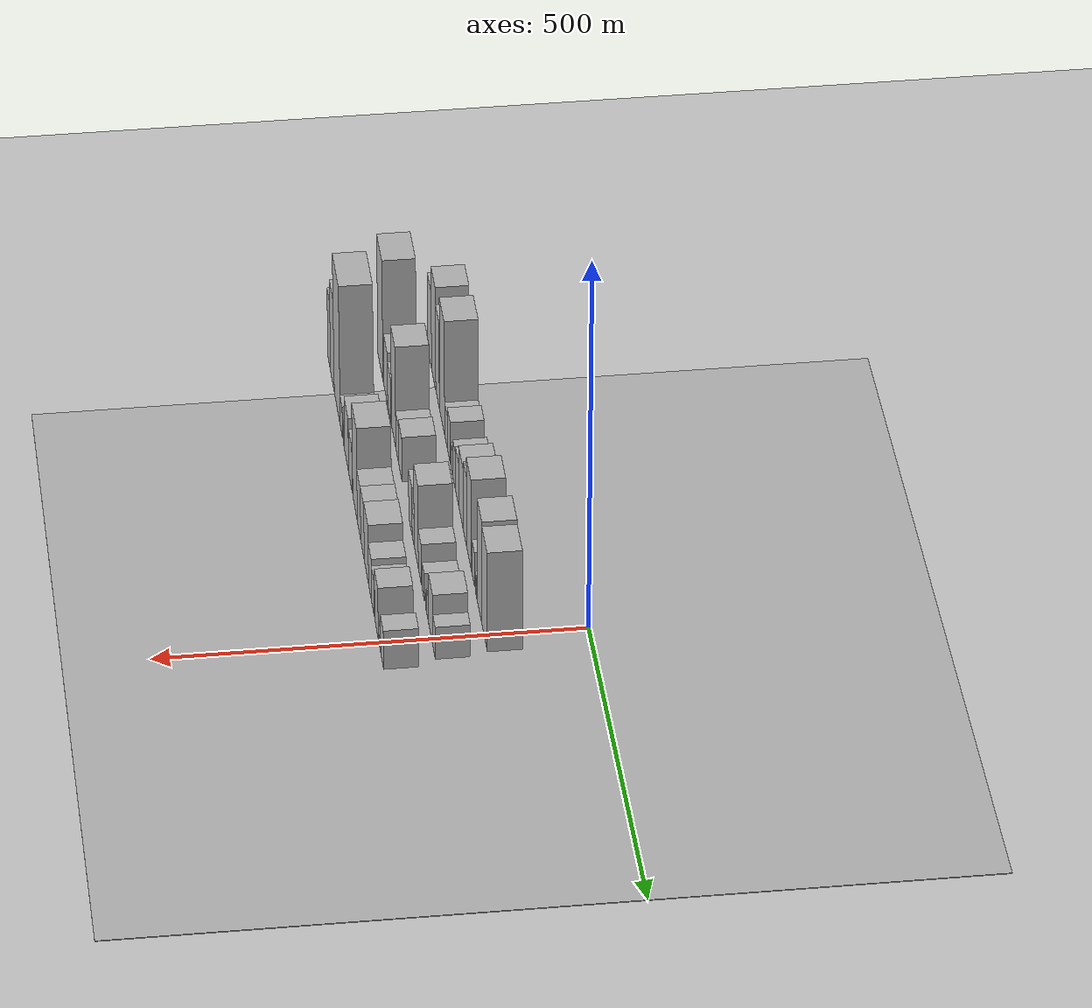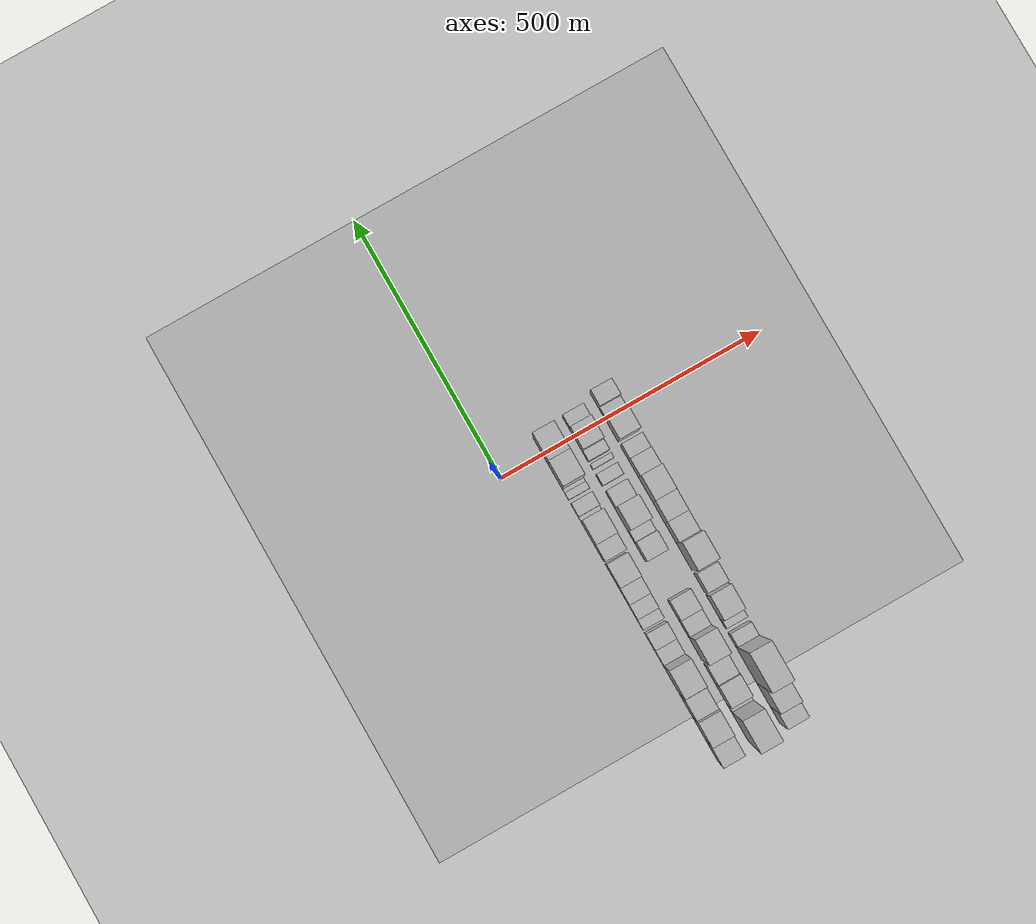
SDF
<sdf version="1.6">
 <world name="default">
  <include><name>ground_plane_1</name><uri>model://HANNAS_ground_plane</uri></include>
  <include>
   <name>ground_plane_2</name>
   <uri>model://HANNAS_ground_plane</uri>
   <pose>100 0 0  0 0 0</pose>
  </include>
  <model name="building_1">
   <static>1</static>
   <pose>100.0000 -559.4491 0 0.000000 0.000000 0.000000</pose>
   <link name="link">
    <pose>0 0 55.50 0 0 0</pose>
    <collision name="collision"><geometry><box><size>40.0000 41.1019 111.0000</size></box></geometry></collision>
    <visual name="visual">
     <cast_shadows>0</cast_shadows>
     <geometry><box><size>40.0000 41.1019 111.0000</size></box></geometry>
     <material>
      <script>
       <uri>model://HANNAS_wall/materials/scripts</uri>
       <uri>model://HANNAS_wall/materials/textures</uri>
       <name>vrc/HANNAS_wall</name>
      </script>
     </material>
    </visual>
   </link>
  </model>
  <model name="building_2">
   <static>1</static>
   <pose>100.0000 -516.3879 0 0.000000 0.000000 0.000000</pose>
   <link name="link">
    <pose>0 0 73.50 0 0 0</pose>
    <collision name="collision"><geometry><box><size>40.0000 45.0204 147.0000</size></box></geometry></collision>
    <visual name="visual">
     <cast_shadows>0</cast_shadows>
     <geometry><box><size>40.0000 45.0204 147.0000</size></box></geometry>
     <material>
      <script>
       <uri>model://HANNAS_wall/materials/scripts</uri>
       <uri>model://HANNAS_wall/materials/textures</uri>
       <name>vrc/HANNAS_wall</name>
      </script>
     </material>
    </visual>
   </link>
  </model>
  <model name="building_3">
   <static>1</static>
   <pose>100.0000 -474.6884 0 0.000000 0.000000 0.000000</pose>
   <link name="link">
    <pose>0 0 61.50 0 0 0</pose>
    <collision name="collision"><geometry><box><size>40.0000 38.3787 123.0000</size></box></geometry></collision>
    <visual name="visual">
     <cast_shadows>0</cast_shadows>
     <geometry><box><size>40.0000 38.3787 123.0000</size></box></geometry>
     <material>
      <script>
       <uri>model://HANNAS_wall/materials/scripts</uri>
       <uri>model://HANNAS_wall/materials/textures</uri>
       <name>vrc/HANNAS_wall</name>
      </script>
     </material>
    </visual>
   </link>
  </model>
  <model name="building_4">
   <static>1</static>
   <pose>100.0000 -424.9814 0 0.000000 0.000000 0.000000</pose>
   <link name="link">
    <pose>0 0 81.00 0 0 0</pose>
    <collision name="collision"><geometry><box><size>40.0000 51.0353 162.0000</size></box></geometry></collision>
    <visual name="visual">
     <cast_shadows>0</cast_shadows>
     <geometry><box><size>40.0000 51.0353 162.0000</size></box></geometry>
     <material>
      <script>
       <uri>model://HANNAS_wall/materials/scripts</uri>
       <uri>model://HANNAS_wall/materials/textures</uri>
       <name>vrc/HANNAS_wall</name>
      </script>
     </material>
    </visual>
   </link>
  </model>
  <model name="building_5">
   <static>1</static>
   <pose>100.0000 -385.1434 0 0.000000 0.000000 0.000000</pose>
   <link name="link">
    <pose>0 0 24.00 0 0 0</pose>
    <collision name="collision"><geometry><box><size>40.0000 28.6407 48.0000</size></box></geometry></collision>
    <visual name="visual">
     <cast_shadows>0</cast_shadows>
     <geometry><box><size>40.0000 28.6407 48.0000</size></box></geometry>
     <material>
      <script>
       <uri>model://HANNAS_wall/materials/scripts</uri>
       <uri>model://HANNAS_wall/materials/textures</uri>
       <name>vrc/HANNAS_wall</name>
      </script>
     </material>
    </visual>
   </link>
  </model>
  <model name="building_6">
   <static>1</static>
   <pose>100.0000 -355.3499 0 0.000000 0.000000 0.000000</pose>
   <link name="link">
    <pose>0 0 30.00 0 0 0</pose>
    <collision name="collision"><geometry><box><size>40.0000 30.9463 60.0000</size></box></geometry></collision>
    <visual name="visual">
     <cast_shadows>0</cast_shadows>
     <geometry><box><size>40.0000 30.9463 60.0000</size></box></geometry>
     <material>
      <script>
       <uri>model://HANNAS_wall/materials/scripts</uri>
       <uri>model://HANNAS_wall/materials/textures</uri>
       <name>vrc/HANNAS_wall</name>
      </script>
     </material>
    </visual>
   </link>
  </model>
  <model name="building_7">
   <static>1</static>
   <pose>100.0000 -323.7551 0 0.000000 0.000000 0.000000</pose>
   <link name="link">
    <pose>0 0 18.00 0 0 0</pose>
    <collision name="collision"><geometry><box><size>40.0000 20.2433 36.0000</size></box></geometry></collision>
    <visual name="visual">
     <cast_shadows>0</cast_shadows>
     <geometry><box><size>40.0000 20.2433 36.0000</size></box></geometry>
     <material>
      <script>
       <uri>model://HANNAS_wall/materials/scripts</uri>
       <uri>model://HANNAS_wall/materials/textures</uri>
       <name>vrc/HANNAS_wall</name>
      </script>
     </material>
    </visual>
   </link>
  </model>
  <model name="building_8">
   <static>1</static>
   <pose>100.0000 -299.7620 0 0.000000 0.000000 0.000000</pose>
   <link name="link">
    <pose>0 0 27.00 0 0 0</pose>
    <collision name="collision"><geometry><box><size>40.0000 27.7428 54.0000</size></box></geometry></collision>
    <visual name="visual">
     <cast_shadows>0</cast_shadows>
     <geometry><box><size>40.0000 27.7428 54.0000</size></box></geometry>
     <material>
      <script>
       <uri>model://HANNAS_wall/materials/scripts</uri>
       <uri>model://HANNAS_wall/materials/textures</uri>
       <name>vrc/HANNAS_wall</name>
      </script>
     </material>
    </visual>
   </link>
  </model>
  <model name="building_9">
   <static>1</static>
   <pose>100.0000 -269.9107 0 0.000000 0.000000 0.000000</pose>
   <link name="link">
    <pose>0 0 31.50 0 0 0</pose>
    <collision name="collision"><geometry><box><size>40.0000 31.9600 63.0000</size></box></geometry></collision>
    <visual name="visual">
     <cast_shadows>0</cast_shadows>
     <geometry><box><size>40.0000 31.9600 63.0000</size></box></geometry>
     <material>
      <script>
       <uri>model://HANNAS_wall/materials/scripts</uri>
       <uri>model://HANNAS_wall/materials/textures</uri>
       <name>vrc/HANNAS_wall</name>
      </script>
     </material>
    </visual>
   </link>
  </model>
  <model name="building_10">
   <static>1</static>
   <pose>100.0000 -231.6543 0 0.000000 0.000000 0.000000</pose>
   <link name="link">
    <pose>0 0 43.50 0 0 0</pose>
    <collision name="collision"><geometry><box><size>40.0000 44.5528 87.0000</size></box></geometry></collision>
    <visual name="visual">
     <cast_shadows>0</cast_shadows>
     <geometry><box><size>40.0000 44.5528 87.0000</size></box></geometry>
     <material>
      <script>
       <uri>model://HANNAS_wall/materials/scripts</uri>
       <uri>model://HANNAS_wall/materials/textures</uri>
       <name>vrc/HANNAS_wall</name>
      </script>
     </material>
    </visual>
   </link>
  </model>
  <model name="building_11">
   <static>1</static>
   <pose>100.0000 -189.0056 0 0.000000 0.000000 0.000000</pose>
   <link name="link">
    <pose>0 0 49.50 0 0 0</pose>
    <collision name="collision"><geometry><box><size>40.0000 30.7445 99.0000</size></box></geometry></collision>
    <visual name="visual">
     <cast_shadows>0</cast_shadows>
     <geometry><box><size>40.0000 30.7445 99.0000</size></box></geometry>
     <material>
      <script>
       <uri>model://HANNAS_wall/materials/scripts</uri>
       <uri>model://HANNAS_wall/materials/textures</uri>
       <name>vrc/HANNAS_wall</name>
      </script>
     </material>
    </visual>
   </link>
  </model>
  <model name="building_12">
   <static>1</static>
   <pose>100.0000 -151.0599 0 0.000000 0.000000 0.000000</pose>
   <link name="link">
    <pose>0 0 63.00 0 0 0</pose>
    <collision name="collision"><geometry><box><size>40.0000 45.1471 126.0000</size></box></geometry></collision>
    <visual name="visual">
     <cast_shadows>0</cast_shadows>
     <geometry><box><size>40.0000 45.1471 126.0000</size></box></geometry>
     <material>
      <script>
       <uri>model://HANNAS_wall/materials/scripts</uri>
       <uri>model://HANNAS_wall/materials/textures</uri>
       <name>vrc/HANNAS_wall</name>
      </script>
     </material>
    </visual>
   </link>
  </model>
  <model name="building_13">
   <static>1</static>
   <pose>100.0000 -124.5422 0 0.000000 0.000000 0.000000</pose>
   <link name="link">
    <pose>0 0 9.00 0 0 0</pose>
    <collision name="collision"><geometry><box><size>40.0000 7.8883 18.0000</size></box></geometry></collision>
    <visual name="visual">
     <cast_shadows>0</cast_shadows>
     <geometry><box><size>40.0000 7.8883 18.0000</size></box></geometry>
     <material>
      <script>
       <uri>model://HANNAS_wall/materials/scripts</uri>
       <uri>model://HANNAS_wall/materials/textures</uri>
       <name>vrc/HANNAS_wall</name>
      </script>
     </material>
    </visual>
   </link>
  </model>
  <model name="building_14">
   <static>1</static>
   <pose>100.0000 -107.7938 0 0.000000 0.000000 0.000000</pose>
   <link name="link">
    <pose>0 0 24.00 0 0 0</pose>
    <collision name="collision"><geometry><box><size>40.0000 25.6084 48.0000</size></box></geometry></collision>
    <visual name="visual">
     <cast_shadows>0</cast_shadows>
     <geometry><box><size>40.0000 25.6084 48.0000</size></box></geometry>
     <material>
      <script>
       <uri>model://HANNAS_wall/materials/scripts</uri>
       <uri>model://HANNAS_wall/materials/textures</uri>
       <name>vrc/HANNAS_wall</name>
      </script>
     </material>
    </visual>
   </link>
  </model>
  <model name="building_15">
   <static>1</static>
   <pose>100.0000 -81.2954 0 0.000000 0.000000 0.000000</pose>
   <link name="link">
    <pose>0 0 13.50 0 0 0</pose>
    <collision name="collision"><geometry><box><size>40.0000 13.3885 27.0000</size></box></geometry></collision>
    <visual name="visual">
     <cast_shadows>0</cast_shadows>
     <geometry><box><size>40.0000 13.3885 27.0000</size></box></geometry>
     <material>
      <script>
       <uri>model://HANNAS_wall/materials/scripts</uri>
       <uri>model://HANNAS_wall/materials/textures</uri>
       <name>vrc/HANNAS_wall</name>
      </script>
     </material>
    </visual>
   </link>
  </model>
  <model name="building_16">
   <static>1</static>
   <pose>100.0000 -70.9838 0 0.000000 0.000000 0.000000</pose>
   <link name="link">
    <pose>0 0 7.50 0 0 0</pose>
    <collision name="collision"><geometry><box><size>40.0000 7.2346 15.0000</size></box></geometry></collision>
    <visual name="visual">
     <cast_shadows>0</cast_shadows>
     <geometry><box><size>40.0000 7.2346 15.0000</size></box></geometry>
     <material>
      <script>
       <uri>model://HANNAS_wall/materials/scripts</uri>
       <uri>model://HANNAS_wall/materials/textures</uri>
       <name>vrc/HANNAS_wall</name>
      </script>
     </material>
    </visual>
   </link>
  </model>
  <model name="building_17">
   <static>1</static>
   <pose>100.0000 -43.8087 0 0.000000 0.000000 0.000000</pose>
   <link name="link">
    <pose>0 0 72.00 0 0 0</pose>
    <collision name="collision"><geometry><box><size>40.0000 47.1157 144.0000</size></box></geometry></collision>
    <visual name="visual">
     <cast_shadows>0</cast_shadows>
     <geometry><box><size>40.0000 47.1157 144.0000</size></box></geometry>
     <material>
      <script>
       <uri>model://HANNAS_wall/materials/scripts</uri>
       <uri>model://HANNAS_wall/materials/textures</uri>
       <name>vrc/HANNAS_wall</name>
      </script>
     </material>
    </visual>
   </link>
  </model>
  <model name="building_18">
   <static>1</static>
   <pose>100.0000 5.4919 0 0.000000 0.000000 0.000000</pose>
   <link name="link">
    <pose>0 0 69.00 0 0 0</pose>
    <collision name="collision"><geometry><box><size>40.0000 51.4854 138.0000</size></box></geometry></collision>
    <visual name="visual">
     <cast_shadows>0</cast_shadows>
     <geometry><box><size>40.0000 51.4854 138.0000</size></box></geometry>
     <material>
      <script>
       <uri>model://HANNAS_wall/materials/scripts</uri>
       <uri>model://HANNAS_wall/materials/textures</uri>
       <name>vrc/HANNAS_wall</name>
      </script>
     </material>
    </visual>
   </link>
  </model>
  <model name="building_35">
   <static>1</static>
   <pose>160.0000 -550.9667 0 0.000000 0.000000 0.000000</pose>
   <link name="link">
    <pose>0 0 85.50 0 0 0</pose>
    <collision name="collision"><geometry><box><size>40.0000 58.0666 171.0000</size></box></geometry></collision>
    <visual name="visual">
     <cast_shadows>0</cast_shadows>
     <geometry><box><size>40.0000 58.0666 171.0000</size></box></geometry>
     <material>
      <script>
       <uri>model://HANNAS_wall/materials/scripts</uri>
       <uri>model://HANNAS_wall/materials/textures</uri>
       <name>vrc/HANNAS_wall</name>
      </script>
     </material>
    </visual>
   </link>
  </model>
  <model name="building_36">
   <static>1</static>
   <pose>160.0000 -516.1299 0 0.000000 0.000000 0.000000</pose>
   <link name="link">
    <pose>0 0 13.50 0 0 0</pose>
    <collision name="collision"><geometry><box><size>40.0000 11.6070 27.0000</size></box></geometry></collision>
    <visual name="visual">
     <cast_shadows>0</cast_shadows>
     <geometry><box><size>40.0000 11.6070 27.0000</size></box></geometry>
     <material>
      <script>
       <uri>model://HANNAS_wall/materials/scripts</uri>
       <uri>model://HANNAS_wall/materials/textures</uri>
       <name>vrc/HANNAS_wall</name>
      </script>
     </material>
    </visual>
   </link>
  </model>
  <model name="building_37">
   <static>1</static>
   <pose>160.0000 -489.8425 0 0.000000 0.000000 0.000000</pose>
   <link name="link">
    <pose>0 0 37.50 0 0 0</pose>
    <collision name="collision"><geometry><box><size>40.0000 40.9678 75.0000</size></box></geometry></collision>
    <visual name="visual">
     <cast_shadows>0</cast_shadows>
     <geometry><box><size>40.0000 40.9678 75.0000</size></box></geometry>
     <material>
      <script>
       <uri>model://HANNAS_wall/materials/scripts</uri>
       <uri>model://HANNAS_wall/materials/textures</uri>
       <name>vrc/HANNAS_wall</name>
      </script>
     </material>
    </visual>
   </link>
  </model>
  <model name="building_38">
   <static>1</static>
   <pose>160.0000 -450.9846 0 0.000000 0.000000 0.000000</pose>
   <link name="link">
    <pose>0 0 31.50 0 0 0</pose>
    <collision name="collision"><geometry><box><size>40.0000 36.7479 63.0000</size></box></geometry></collision>
    <visual name="visual">
     <cast_shadows>0</cast_shadows>
     <geometry><box><size>40.0000 36.7479 63.0000</size></box></geometry>
     <material>
      <script>
       <uri>model://HANNAS_wall/materials/scripts</uri>
       <uri>model://HANNAS_wall/materials/textures</uri>
       <name>vrc/HANNAS_wall</name>
      </script>
     </material>
    </visual>
   </link>
  </model>
  <model name="building_39">
   <static>1</static>
   <pose>160.0000 -402.6543 0 0.000000 0.000000 0.000000</pose>
   <link name="link">
    <pose>0 0 72.00 0 0 0</pose>
    <collision name="collision"><geometry><box><size>40.0000 45.9127 144.0000</size></box></geometry></collision>
    <visual name="visual">
     <cast_shadows>0</cast_shadows>
     <geometry><box><size>40.0000 45.9127 144.0000</size></box></geometry>
     <material>
      <script>
       <uri>model://HANNAS_wall/materials/scripts</uri>
       <uri>model://HANNAS_wall/materials/textures</uri>
       <name>vrc/HANNAS_wall</name>
      </script>
     </material>
    </visual>
   </link>
  </model>
  <model name="building_40">
   <static>1</static>
   <pose>160.0000 -364.5447 0 0.000000 0.000000 0.000000</pose>
   <link name="link">
    <pose>0 0 27.00 0 0 0</pose>
    <collision name="collision"><geometry><box><size>40.0000 30.3064 54.0000</size></box></geometry></collision>
    <visual name="visual">
     <cast_shadows>0</cast_shadows>
     <geometry><box><size>40.0000 30.3064 54.0000</size></box></geometry>
     <material>
      <script>
       <uri>model://HANNAS_wall/materials/scripts</uri>
       <uri>model://HANNAS_wall/materials/textures</uri>
       <name>vrc/HANNAS_wall</name>
      </script>
     </material>
    </visual>
   </link>
  </model>
  <model name="building_41">
   <static>1</static>
   <pose>160.0000 -330.6106 0 0.000000 0.000000 0.000000</pose>
   <link name="link">
    <pose>0 0 31.50 0 0 0</pose>
    <collision name="collision"><geometry><box><size>40.0000 37.5618 63.0000</size></box></geometry></collision>
    <visual name="visual">
     <cast_shadows>0</cast_shadows>
     <geometry><box><size>40.0000 37.5618 63.0000</size></box></geometry>
     <material>
      <script>
       <uri>model://HANNAS_wall/materials/scripts</uri>
       <uri>model://HANNAS_wall/materials/textures</uri>
       <name>vrc/HANNAS_wall</name>
      </script>
     </material>
    </visual>
   </link>
  </model>
  <model name="building_42">
   <static>1</static>
   <pose>160.0000 -220.6030 0 0.000000 0.000000 0.000000</pose>
   <link name="link">
    <pose>0 0 34.50 0 0 0</pose>
    <collision name="collision"><geometry><box><size>40.0000 36.1512 69.0000</size></box></geometry></collision>
    <visual name="visual">
     <cast_shadows>0</cast_shadows>
     <geometry><box><size>40.0000 36.1512 69.0000</size></box></geometry>
     <material>
      <script>
       <uri>model://HANNAS_wall/materials/scripts</uri>
       <uri>model://HANNAS_wall/materials/textures</uri>
       <name>vrc/HANNAS_wall</name>
      </script>
     </material>
    </visual>
   </link>
  </model>
  <model name="building_43">
   <static>1</static>
   <pose>160.0000 -191.7162 0 0.000000 0.000000 0.000000</pose>
   <link name="link">
    <pose>0 0 19.50 0 0 0</pose>
    <collision name="collision"><geometry><box><size>40.0000 21.6223 39.0000</size></box></geometry></collision>
    <visual name="visual">
     <cast_shadows>0</cast_shadows>
     <geometry><box><size>40.0000 21.6223 39.0000</size></box></geometry>
     <material>
      <script>
       <uri>model://HANNAS_wall/materials/scripts</uri>
       <uri>model://HANNAS_wall/materials/textures</uri>
       <name>vrc/HANNAS_wall</name>
      </script>
     </material>
    </visual>
   </link>
  </model>
  <model name="building_44">
   <static>1</static>
   <pose>160.0000 -158.9829 0 0.000000 0.000000 0.000000</pose>
   <link name="link">
    <pose>0 0 58.50 0 0 0</pose>
    <collision name="collision"><geometry><box><size>40.0000 43.8444 117.0000</size></box></geometry></collision>
    <visual name="visual">
     <cast_shadows>0</cast_shadows>
     <geometry><box><size>40.0000 43.8444 117.0000</size></box></geometry>
     <material>
      <script>
       <uri>model://HANNAS_wall/materials/scripts</uri>
       <uri>model://HANNAS_wall/materials/textures</uri>
       <name>vrc/HANNAS_wall</name>
      </script>
     </material>
    </visual>
   </link>
  </model>
  <model name="building_45">
   <static>1</static>
   <pose>160.0000 -121.3044 0 0.000000 0.000000 0.000000</pose>
   <link name="link">
    <pose>0 0 28.50 0 0 0</pose>
    <collision name="collision"><geometry><box><size>40.0000 31.5126 57.0000</size></box></geometry></collision>
    <visual name="visual">
     <cast_shadows>0</cast_shadows>
     <geometry><box><size>40.0000 31.5126 57.0000</size></box></geometry>
     <material>
      <script>
       <uri>model://HANNAS_wall/materials/scripts</uri>
       <uri>model://HANNAS_wall/materials/textures</uri>
       <name>vrc/HANNAS_wall</name>
      </script>
     </material>
    </visual>
   </link>
  </model>
  <model name="building_46">
   <static>1</static>
   <pose>160.0000 -84.6928 0 0.000000 0.000000 0.000000</pose>
   <link name="link">
    <pose>0 0 19.50 0 0 0</pose>
    <collision name="collision"><geometry><box><size>40.0000 21.7106 39.0000</size></box></geometry></collision>
    <visual name="visual">
     <cast_shadows>0</cast_shadows>
     <geometry><box><size>40.0000 21.7106 39.0000</size></box></geometry>
     <material>
      <script>
       <uri>model://HANNAS_wall/materials/scripts</uri>
       <uri>model://HANNAS_wall/materials/textures</uri>
       <name>vrc/HANNAS_wall</name>
      </script>
     </material>
    </visual>
   </link>
  </model>
  <model name="building_47">
   <static>1</static>
   <pose>160.0000 -58.9150 0 0.000000 0.000000 0.000000</pose>
   <link name="link">
    <pose>0 0 12.00 0 0 0</pose>
    <collision name="collision"><geometry><box><size>40.0000 9.8449 24.0000</size></box></geometry></collision>
    <visual name="visual">
     <cast_shadows>0</cast_shadows>
     <geometry><box><size>40.0000 9.8449 24.0000</size></box></geometry>
     <material>
      <script>
       <uri>model://HANNAS_wall/materials/scripts</uri>
       <uri>model://HANNAS_wall/materials/textures</uri>
       <name>vrc/HANNAS_wall</name>
      </script>
     </material>
    </visual>
   </link>
  </model>
  <model name="building_48">
   <static>1</static>
   <pose>160.0000 -39.0777 0 0.000000 0.000000 0.000000</pose>
   <link name="link">
    <pose>0 0 18.00 0 0 0</pose>
    <collision name="collision"><geometry><box><size>40.0000 19.8298 36.0000</size></box></geometry></collision>
    <visual name="visual">
     <cast_shadows>0</cast_shadows>
     <geometry><box><size>40.0000 19.8298 36.0000</size></box></geometry>
     <material>
      <script>
       <uri>model://HANNAS_wall/materials/scripts</uri>
       <uri>model://HANNAS_wall/materials/textures</uri>
       <name>vrc/HANNAS_wall</name>
      </script>
     </material>
    </visual>
   </link>
  </model>
  <model name="building_49">
   <static>1</static>
   <pose>160.0000 -7.6653 0 0.000000 0.000000 0.000000</pose>
   <link name="link">
    <pose>0 0 36.00 0 0 0</pose>
    <collision name="collision"><geometry><box><size>40.0000 42.9948 72.0000</size></box></geometry></collision>
    <visual name="visual">
     <cast_shadows>0</cast_shadows>
     <geometry><box><size>40.0000 42.9948 72.0000</size></box></geometry>
     <material>
      <script>
       <uri>model://HANNAS_wall/materials/scripts</uri>
       <uri>model://HANNAS_wall/materials/textures</uri>
       <name>vrc/HANNAS_wall</name>
      </script>
     </material>
    </visual>
   </link>
  </model>
  <model name="building_50">
   <static>1</static>
   <pose>160.0000 26.1106 0 0.000000 0.000000 0.000000</pose>
   <link name="link">
    <pose>0 0 22.50 0 0 0</pose>
    <collision name="collision"><geometry><box><size>40.0000 24.5571 45.0000</size></box></geometry></collision>
    <visual name="visual">
     <cast_shadows>0</cast_shadows>
     <geometry><box><size>40.0000 24.5571 45.0000</size></box></geometry>
     <material>
      <script>
       <uri>model://HANNAS_wall/materials/scripts</uri>
       <uri>model://HANNAS_wall/materials/textures</uri>
       <name>vrc/HANNAS_wall</name>
      </script>
     </material>
    </visual>
   </link>
  </model>
  <model name="building_69">
   <static>1</static>
   <pose>220.0000 -564.0704 0 0.000000 0.000000 0.000000</pose>
   <link name="link">
    <pose>0 0 49.50 0 0 0</pose>
    <collision name="collision"><geometry><box><size>40.0000 31.8592 99.0000</size></box></geometry></collision>
    <visual name="visual">
     <cast_shadows>0</cast_shadows>
     <geometry><box><size>40.0000 31.8592 99.0000</size></box></geometry>
     <material>
      <script>
       <uri>model://HANNAS_wall/materials/scripts</uri>
       <uri>model://HANNAS_wall/materials/textures</uri>
       <name>vrc/HANNAS_wall</name>
      </script>
     </material>
    </visual>
   </link>
  </model>
  <model name="building_70">
   <static>1</static>
   <pose>220.0000 -526.1334 0 0.000000 0.000000 0.000000</pose>
   <link name="link">
    <pose>0 0 66.00 0 0 0</pose>
    <collision name="collision"><geometry><box><size>40.0000 44.0147 132.0000</size></box></geometry></collision>
    <visual name="visual">
     <cast_shadows>0</cast_shadows>
     <geometry><box><size>40.0000 44.0147 132.0000</size></box></geometry>
     <material>
      <script>
       <uri>model://HANNAS_wall/materials/scripts</uri>
       <uri>model://HANNAS_wall/materials/textures</uri>
       <name>vrc/HANNAS_wall</name>
      </script>
     </material>
    </visual>
   </link>
  </model>
  <model name="building_71">
   <static>1</static>
   <pose>220.0000 -468.8204 0 0.000000 0.000000 0.000000</pose>
   <link name="link">
    <pose>0 0 99.00 0 0 0</pose>
    <collision name="collision"><geometry><box><size>40.0000 70.6113 198.0000</size></box></geometry></collision>
    <visual name="visual">
     <cast_shadows>0</cast_shadows>
     <geometry><box><size>40.0000 70.6113 198.0000</size></box></geometry>
     <material>
      <script>
       <uri>model://HANNAS_wall/materials/scripts</uri>
       <uri>model://HANNAS_wall/materials/textures</uri>
       <name>vrc/HANNAS_wall</name>
      </script>
     </material>
    </visual>
   </link>
  </model>
  <model name="building_72">
   <static>1</static>
   <pose>220.0000 -421.0151 0 0.000000 0.000000 0.000000</pose>
   <link name="link">
    <pose>0 0 22.50 0 0 0</pose>
    <collision name="collision"><geometry><box><size>40.0000 24.9993 45.0000</size></box></geometry></collision>
    <visual name="visual">
     <cast_shadows>0</cast_shadows>
     <geometry><box><size>40.0000 24.9993 45.0000</size></box></geometry>
     <material>
      <script>
       <uri>model://HANNAS_wall/materials/scripts</uri>
       <uri>model://HANNAS_wall/materials/textures</uri>
       <name>vrc/HANNAS_wall</name>
      </script>
     </material>
    </visual>
   </link>
  </model>
  <model name="building_73">
   <static>1</static>
   <pose>220.0000 -391.0454 0 0.000000 0.000000 0.000000</pose>
   <link name="link">
    <pose>0 0 16.50 0 0 0</pose>
    <collision name="collision"><geometry><box><size>40.0000 16.9401 33.0000</size></box></geometry></collision>
    <visual name="visual">
     <cast_shadows>0</cast_shadows>
     <geometry><box><size>40.0000 16.9401 33.0000</size></box></geometry>
     <material>
      <script>
       <uri>model://HANNAS_wall/materials/scripts</uri>
       <uri>model://HANNAS_wall/materials/textures</uri>
       <name>vrc/HANNAS_wall</name>
      </script>
     </material>
    </visual>
   </link>
  </model>
  <model name="building_74">
   <static>1</static>
   <pose>220.0000 -359.3678 0 0.000000 0.000000 0.000000</pose>
   <link name="link">
    <pose>0 0 39.00 0 0 0</pose>
    <collision name="collision"><geometry><box><size>40.0000 46.4150 78.0000</size></box></geometry></collision>
    <visual name="visual">
     <cast_shadows>0</cast_shadows>
     <geometry><box><size>40.0000 46.4150 78.0000</size></box></geometry>
     <material>
      <script>
       <uri>model://HANNAS_wall/materials/scripts</uri>
       <uri>model://HANNAS_wall/materials/textures</uri>
       <name>vrc/HANNAS_wall</name>
      </script>
     </material>
    </visual>
   </link>
  </model>
  <model name="building_75">
   <static>1</static>
   <pose>220.0000 -313.7440 0 0.000000 0.000000 0.000000</pose>
   <link name="link">
    <pose>0 0 33.00 0 0 0</pose>
    <collision name="collision"><geometry><box><size>40.0000 36.8327 66.0000</size></box></geometry></collision>
    <visual name="visual">
     <cast_shadows>0</cast_shadows>
     <geometry><box><size>40.0000 36.8327 66.0000</size></box></geometry>
     <material>
      <script>
       <uri>model://HANNAS_wall/materials/scripts</uri>
       <uri>model://HANNAS_wall/materials/textures</uri>
       <name>vrc/HANNAS_wall</name>
      </script>
     </material>
    </visual>
   </link>
  </model>
  <model name="building_76">
   <static>1</static>
   <pose>220.0000 -263.4431 0 0.000000 0.000000 0.000000</pose>
   <link name="link">
    <pose>0 0 66.00 0 0 0</pose>
    <collision name="collision"><geometry><box><size>40.0000 51.7691 132.0000</size></box></geometry></collision>
    <visual name="visual">
     <cast_shadows>0</cast_shadows>
     <geometry><box><size>40.0000 51.7691 132.0000</size></box></geometry>
     <material>
      <script>
       <uri>model://HANNAS_wall/materials/scripts</uri>
       <uri>model://HANNAS_wall/materials/textures</uri>
       <name>vrc/HANNAS_wall</name>
      </script>
     </material>
    </visual>
   </link>
  </model>
  <model name="building_77">
   <static>1</static>
   <pose>220.0000 -218.4346 0 0.000000 0.000000 0.000000</pose>
   <link name="link">
    <pose>0 0 37.50 0 0 0</pose>
    <collision name="collision"><geometry><box><size>40.0000 38.2479 75.0000</size></box></geometry></collision>
    <visual name="visual">
     <cast_shadows>0</cast_shadows>
     <geometry><box><size>40.0000 38.2479 75.0000</size></box></geometry>
     <material>
      <script>
       <uri>model://HANNAS_wall/materials/scripts</uri>
       <uri>model://HANNAS_wall/materials/textures</uri>
       <name>vrc/HANNAS_wall</name>
      </script>
     </material>
    </visual>
   </link>
  </model>
  <model name="building_78">
   <static>1</static>
   <pose>220.0000 -179.5098 0 0.000000 0.000000 0.000000</pose>
   <link name="link">
    <pose>0 0 39.00 0 0 0</pose>
    <collision name="collision"><geometry><box><size>40.0000 39.6016 78.0000</size></box></geometry></collision>
    <visual name="visual">
     <cast_shadows>0</cast_shadows>
     <geometry><box><size>40.0000 39.6016 78.0000</size></box></geometry>
     <material>
      <script>
       <uri>model://HANNAS_wall/materials/scripts</uri>
       <uri>model://HANNAS_wall/materials/textures</uri>
       <name>vrc/HANNAS_wall</name>
      </script>
     </material>
    </visual>
   </link>
  </model>
  <model name="building_79">
   <static>1</static>
   <pose>220.0000 -136.1722 0 0.000000 0.000000 0.000000</pose>
   <link name="link">
    <pose>0 0 42.00 0 0 0</pose>
    <collision name="collision"><geometry><box><size>40.0000 47.0736 84.0000</size></box></geometry></collision>
    <visual name="visual">
     <cast_shadows>0</cast_shadows>
     <geometry><box><size>40.0000 47.0736 84.0000</size></box></geometry>
     <material>
      <script>
       <uri>model://HANNAS_wall/materials/scripts</uri>
       <uri>model://HANNAS_wall/materials/textures</uri>
       <name>vrc/HANNAS_wall</name>
      </script>
     </material>
    </visual>
   </link>
  </model>
  <model name="building_80">
   <static>1</static>
   <pose>220.0000 -96.1420 0 0.000000 0.000000 0.000000</pose>
   <link name="link">
    <pose>0 0 30.00 0 0 0</pose>
    <collision name="collision"><geometry><box><size>40.0000 32.9868 60.0000</size></box></geometry></collision>
    <visual name="visual">
     <cast_shadows>0</cast_shadows>
     <geometry><box><size>40.0000 32.9868 60.0000</size></box></geometry>
     <material>
      <script>
       <uri>model://HANNAS_wall/materials/scripts</uri>
       <uri>model://HANNAS_wall/materials/textures</uri>
       <name>vrc/HANNAS_wall</name>
      </script>
     </material>
    </visual>
   </link>
  </model>
  <model name="building_81">
   <static>1</static>
   <pose>220.0000 -65.5106 0 0.000000 0.000000 0.000000</pose>
   <link name="link">
    <pose>0 0 25.50 0 0 0</pose>
    <collision name="collision"><geometry><box><size>40.0000 28.2760 51.0000</size></box></geometry></collision>
    <visual name="visual">
     <cast_shadows>0</cast_shadows>
     <geometry><box><size>40.0000 28.2760 51.0000</size></box></geometry>
     <material>
      <script>
       <uri>model://HANNAS_wall/materials/scripts</uri>
       <uri>model://HANNAS_wall/materials/textures</uri>
       <name>vrc/HANNAS_wall</name>
      </script>
     </material>
    </visual>
   </link>
  </model>
  <model name="building_82">
   <static>1</static>
   <pose>220.0000 -25.5840 0 0.000000 0.000000 0.000000</pose>
   <link name="link">
    <pose>0 0 36.00 0 0 0</pose>
    <collision name="collision"><geometry><box><size>40.0000 37.5772 72.0000</size></box></geometry></collision>
    <visual name="visual">
     <cast_shadows>0</cast_shadows>
     <geometry><box><size>40.0000 37.5772 72.0000</size></box></geometry>
     <material>
      <script>
       <uri>model://HANNAS_wall/materials/scripts</uri>
       <uri>model://HANNAS_wall/materials/textures</uri>
       <name>vrc/HANNAS_wall</name>
      </script>
     </material>
    </visual>
   </link>
  </model>
  <model name="building_83">
   <static>1</static>
   <pose>220.0000 9.9458 0 0.000000 0.000000 0.000000</pose>
   <link name="link">
    <pose>0 0 16.50 0 0 0</pose>
    <collision name="collision"><geometry><box><size>40.0000 19.4825 33.0000</size></box></geometry></collision>
    <visual name="visual">
     <cast_shadows>0</cast_shadows>
     <geometry><box><size>40.0000 19.4825 33.0000</size></box></geometry>
     <material>
      <script>
       <uri>model://HANNAS_wall/materials/scripts</uri>
       <uri>model://HANNAS_wall/materials/textures</uri>
       <name>vrc/HANNAS_wall</name>
      </script>
     </material>
    </visual>
   </link>
  </model>
  <model name="building_84">
   <static>1</static>
   <pose>220.0000 35.1355 0 0.000000 0.000000 0.000000</pose>
   <link name="link">
    <pose>0 0 27.00 0 0 0</pose>
    <collision name="collision"><geometry><box><size>40.0000 30.8969 54.0000</size></box></geometry></collision>
    <visual name="visual">
     <cast_shadows>0</cast_shadows>
     <geometry><box><size>40.0000 30.8969 54.0000</size></box></geometry>
     <material>
      <script>
       <uri>model://HANNAS_wall/materials/scripts</uri>
       <uri>model://HANNAS_wall/materials/textures</uri>
       <name>vrc/HANNAS_wall</name>
      </script>
     </material>
    </visual>
   </link>
  </model>
 </world>
</sdf>
